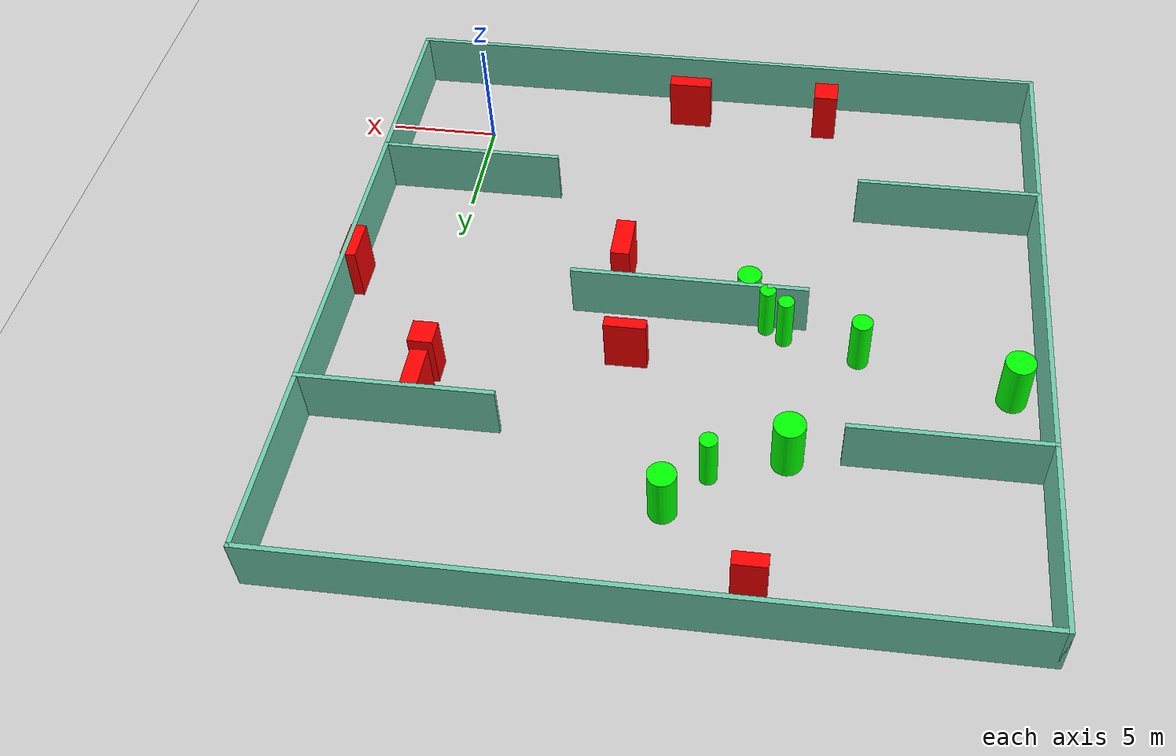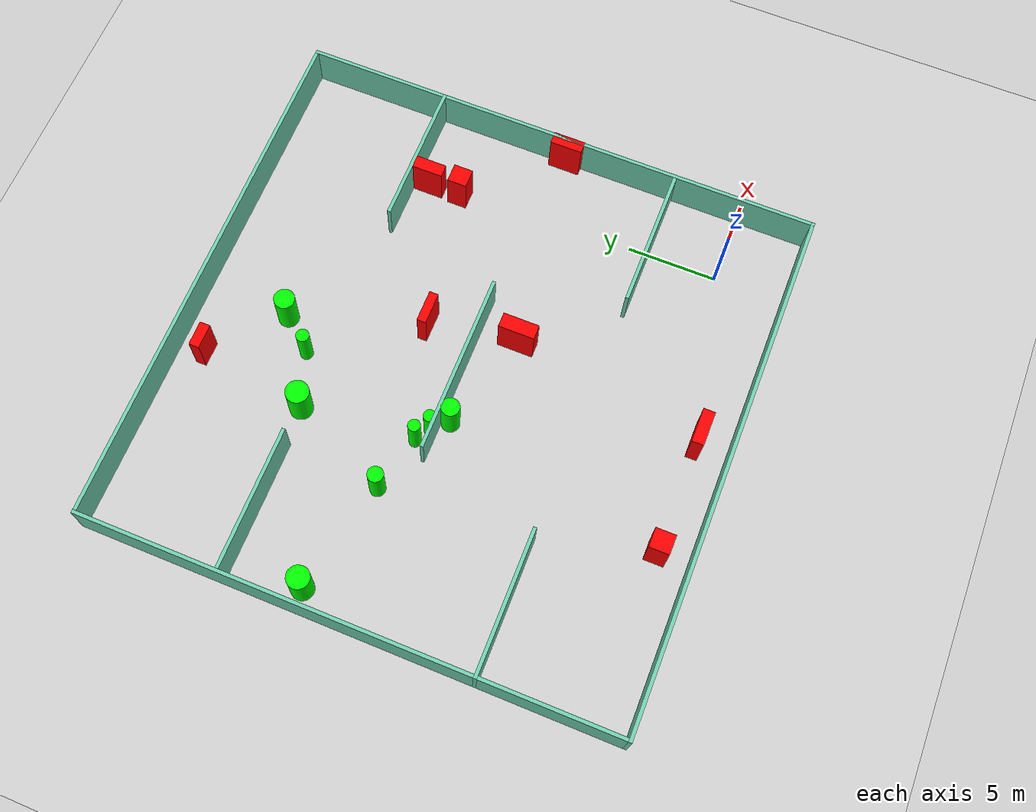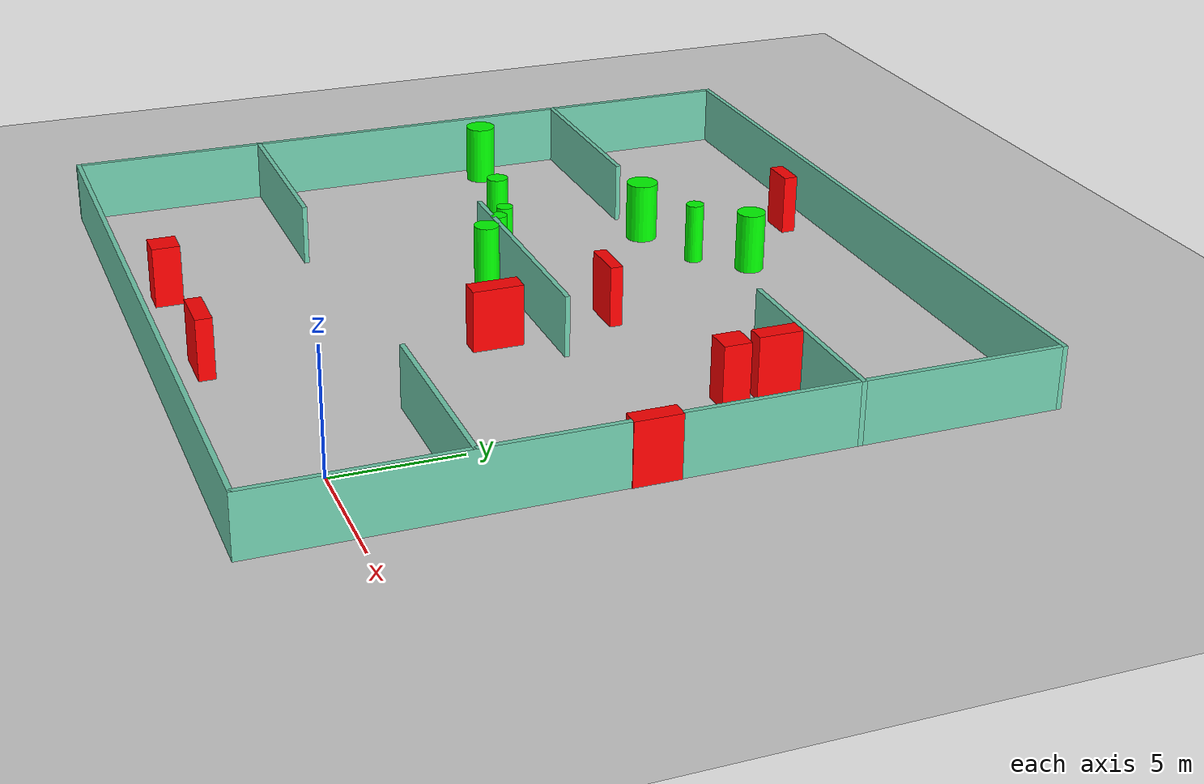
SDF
<sdf version="1.7">
 <world name="default">
  <light name="sun" type="directional">
   <pose>0 0 10 0 -0 0</pose>
   <diffuse>0.8 0.8 0.8 1</diffuse>
   <specular>0.2 0.2 0.2 1</specular>
   <attenuation>
    <range>1000</range>
    <constant>0.9</constant>
    <linear>0.01</linear>
    <quadratic>0.001</quadratic>
   </attenuation>
   <direction>-0.5 0.1 -0.9</direction>
   <spot><inner_angle>0</inner_angle><outer_angle>0</outer_angle><falloff>0</falloff></spot>
  </light>
  <model name="ground_plane">
   <static>1</static>
   <link name="link">
    <collision name="collision">
     <geometry><plane><normal>0 0 1</normal><size>100 100</size></plane></geometry>
     <surface>
      <contact><collide_bitmask>65535</collide_bitmask></contact>
      <friction><ode><mu>100</mu><mu2>50</mu2></ode></friction>
     </surface>
    </collision>
    <visual name="visual">
     <cast_shadows>0</cast_shadows>
     <geometry><plane><normal>0 0 1</normal><size>100 100</size></plane></geometry>
     <material>
      <script><uri>file://media/materials/scripts/gazebo.material</uri><name>Gazebo/Grey</name></script>
     </material>
    </visual>
   </link>
  </model>
  <gravity>0 0 -9.8</gravity>
  <magnetic_field>6e-06 2.3e-05 -4.2e-05</magnetic_field>
  <atmosphere type="adiabatic"/>
  <physics type="ode">
   <max_step_size>0.001</max_step_size>
   <real_time_factor>1</real_time_factor>
   <real_time_update_rate>1000</real_time_update_rate>
  </physics>
  <scene><ambient>0.4 0.4 0.4 1</ambient><background>0.7 0.7 0.7 1</background><shadows>1</shadows></scene>
  <spherical_coordinates>
   <surface_model>EARTH_WGS84</surface_model>
   <latitude_deg>0</latitude_deg>
   <longitude_deg>0</longitude_deg>
   <elevation>0</elevation>
   <heading_deg>0</heading_deg>
  </spherical_coordinates>
  <model name="my_base_walls">
   <link name="Wall_10">
    <collision name="Wall_10_Collision">
     <geometry><box><size>8.2 0.2 2.5</size></box></geometry>
     <pose>0 0 1.25 0 -0 0</pose>
    </collision>
    <visual name="Wall_10_Visual">
     <pose>0 0 1.25 0 -0 0</pose>
     <geometry><box><size>8.2 0.2 2.5</size></box></geometry>
     <material>
      <script><uri>file://media/materials/scripts/gazebo.material</uri><name>Gazebo/Grey</name></script>
      <ambient>0.435294 0.796078 0.67451 1</ambient>
     </material>
     <meta><layer>0</layer></meta>
    </visual>
    <pose>-11 -7 0 0 -0 0</pose>
   </link>
   <link name="Wall_12">
    <collision name="Wall_12_Collision">
     <geometry><box><size>8.2 0.2 2.5</size></box></geometry>
     <pose>0 0 1.25 0 -0 0</pose>
    </collision>
    <visual name="Wall_12_Visual">
     <pose>0 0 1.25 0 -0 0</pose>
     <geometry><box><size>8.2 0.2 2.5</size></box></geometry>
     <material>
      <script><uri>file://media/materials/scripts/gazebo.material</uri><name>Gazebo/Grey</name></script>
      <ambient>0.435294 0.796078 0.67451 1</ambient>
     </material>
     <meta><layer>0</layer></meta>
    </visual>
    <pose>-11 7 0 0 -0 0</pose>
   </link>
   <link name="Wall_14">
    <collision name="Wall_14_Collision">
     <geometry><box><size>8.2 0.2 2.5</size></box></geometry>
     <pose>0 0 1.25 0 -0 0</pose>
    </collision>
    <visual name="Wall_14_Visual">
     <pose>0 0 1.25 0 -0 0</pose>
     <geometry><box><size>8.2 0.2 2.5</size></box></geometry>
     <material>
      <script><uri>file://media/materials/scripts/gazebo.material</uri><name>Gazebo/Grey</name></script>
      <ambient>0.435294 0.796078 0.67451 1</ambient>
     </material>
     <meta><layer>0</layer></meta>
    </visual>
    <pose>11 7 0 0 -0 3.14159</pose>
   </link>
   <link name="Wall_16">
    <collision name="Wall_16_Collision">
     <geometry><box><size>10.2 0.2 2.5</size></box></geometry>
     <pose>0 0 1.25 0 -0 0</pose>
    </collision>
    <visual name="Wall_16_Visual">
     <pose>0 0 1.25 0 -0 0</pose>
     <geometry><box><size>10.2 0.2 2.5</size></box></geometry>
     <material>
      <script><uri>file://media/materials/scripts/gazebo.material</uri><name>Gazebo/Grey</name></script>
      <ambient>0.435294 0.796078 0.67451 1</ambient>
     </material>
     <meta><layer>0</layer></meta>
    </visual>
    <pose>0 0 0 0 -0 3.14159</pose>
   </link>
   <link name="Wall_2">
    <collision name="Wall_2_Collision">
     <geometry><box><size>30.2 0.2 2.5</size></box></geometry>
     <pose>0 0 1.25 0 -0 0</pose>
    </collision>
    <visual name="Wall_2_Visual">
     <pose>0 0 1.25 0 -0 0</pose>
     <geometry><box><size>30.2 0.2 2.5</size></box></geometry>
     <material>
      <script><uri>file://media/materials/scripts/gazebo.material</uri><name>Gazebo/Grey</name></script>
      <ambient>0.435294 0.796078 0.67451 1</ambient>
     </material>
     <meta><layer>0</layer></meta>
    </visual>
    <pose>0 -15 0 0 -0 3.14159</pose>
   </link>
   <link name="Wall_3">
    <collision name="Wall_3_Collision">
     <geometry><box><size>30.2 0.2 2.5</size></box></geometry>
     <pose>0 0 1.25 0 -0 0</pose>
    </collision>
    <visual name="Wall_3_Visual">
     <pose>0 0 1.25 0 -0 0</pose>
     <geometry><box><size>30.2 0.2 2.5</size></box></geometry>
     <material>
      <script><uri>file://media/materials/scripts/gazebo.material</uri><name>Gazebo/Grey</name></script>
      <ambient>0.435294 0.796078 0.67451 1</ambient>
     </material>
     <meta><layer>0</layer></meta>
    </visual>
    <pose>-15 0 0 0 -0 1.5708</pose>
   </link>
   <link name="Wall_4">
    <collision name="Wall_4_Collision">
     <geometry><box><size>30.2 0.2 2.5</size></box></geometry>
     <pose>0 0 1.25 0 -0 0</pose>
    </collision>
    <visual name="Wall_4_Visual">
     <pose>0 0 1.25 0 -0 0</pose>
     <geometry><box><size>30.2 0.2 2.5</size></box></geometry>
     <material>
      <script><uri>file://media/materials/scripts/gazebo.material</uri><name>Gazebo/Grey</name></script>
      <ambient>0.435294 0.796078 0.67451 1</ambient>
     </material>
     <meta><layer>0</layer></meta>
    </visual>
    <pose>0 15 0 0 -0 0</pose>
   </link>
   <link name="Wall_6">
    <collision name="Wall_6_Collision">
     <geometry><box><size>30.2 0.2 2.5</size></box></geometry>
     <pose>0 0 1.25 0 -0 0</pose>
    </collision>
    <visual name="Wall_6_Visual">
     <pose>0 0 1.25 0 -0 0</pose>
     <geometry><box><size>30.2 0.2 2.5</size></box></geometry>
     <material>
      <script><uri>file://media/materials/scripts/gazebo.material</uri><name>Gazebo/Grey</name></script>
      <ambient>0.435294 0.796078 0.67451 1</ambient>
     </material>
     <meta><layer>0</layer></meta>
    </visual>
    <pose>15 0 0 0 -0 1.5708</pose>
   </link>
   <link name="Wall_8">
    <collision name="Wall_8_Collision">
     <geometry><box><size>8.2 0.2 2.5</size></box></geometry>
     <pose>0 0 1.25 0 -0 0</pose>
    </collision>
    <visual name="Wall_8_Visual">
     <pose>0 0 1.25 0 -0 0</pose>
     <geometry><box><size>8.2 0.2 2.5</size></box></geometry>
     <material>
      <script><uri>file://media/materials/scripts/gazebo.material</uri><name>Gazebo/Grey</name></script>
      <ambient>0.435294 0.796078 0.67451 1</ambient>
     </material>
     <meta><layer>0</layer></meta>
    </visual>
    <pose>11 -7 0 0 -0 3.14159</pose>
   </link>
   <static>1</static>
   <pose>-11 11 0 0 -0 0</pose>
  </model>
  <model name="cylinder1">
   <static>1</static>
   <link name="link">
    <inertial>
     <mass>1</mass>
     <inertia><ixx>0.5</ixx><ixy>0</ixy><ixz>0</ixz><iyy>0.5</iyy><iyz>0</iyz><izz>1</izz></inertia>
    </inertial>
    <collision name="collision">
     <geometry><cylinder><radius>0.34071357821564124</radius><length>2.5</length></cylinder></geometry>
    </collision>
    <visual name="visual">
     <geometry><cylinder><radius>0.34071357821564124</radius><length>2.5</length></cylinder></geometry>
     <material>
      <ambient>0 1 0 1</ambient>
      <diffuse>0 1 0 1</diffuse>
      <specular>0.1 0.1 0.1 1</specular>
      <emissive>0 0 0 0</emissive>
     </material>
    </visual>
   </link>
   <pose>-14.372343226322412 11.260583517649387 1.25 0 0 0</pose>
  </model>
  <model name="cylinder2">
   <static>1</static>
   <link name="link">
    <inertial>
     <mass>1</mass>
     <inertia><ixx>0.5</ixx><ixy>0</ixy><ixz>0</ixz><iyy>0.5</iyy><iyz>0</iyz><izz>1</izz></inertia>
    </inertial>
    <collision name="collision">
     <geometry><cylinder><radius>0.443032990273278</radius><length>2.5</length></cylinder></geometry>
    </collision>
    <visual name="visual">
     <geometry><cylinder><radius>0.443032990273278</radius><length>2.5</length></cylinder></geometry>
     <material>
      <ambient>0 1 0 1</ambient>
      <diffuse>0 1 0 1</diffuse>
      <specular>0.1 0.1 0.1 1</specular>
      <emissive>0 0 0 0</emissive>
     </material>
    </visual>
   </link>
   <pose>-18.38672059916577 12.608031052057932 1.25 0 0 0</pose>
  </model>
  <model name="cylinder3">
   <static>1</static>
   <link name="link">
    <inertial>
     <mass>1</mass>
     <inertia><ixx>0.5</ixx><ixy>0</ixy><ixz>0</ixz><iyy>0.5</iyy><iyz>0</iyz><izz>1</izz></inertia>
    </inertial>
    <collision name="collision">
     <geometry><cylinder><radius>0.348089465862379</radius><length>2.5</length></cylinder></geometry>
    </collision>
    <visual name="visual">
     <geometry><cylinder><radius>0.348089465862379</radius><length>2.5</length></cylinder></geometry>
     <material>
      <ambient>0 1 0 1</ambient>
      <diffuse>0 1 0 1</diffuse>
      <specular>0.1 0.1 0.1 1</specular>
      <emissive>0 0 0 0</emissive>
     </material>
    </visual>
   </link>
   <pose>-15.18193877453243 11.805687720688109 1.25 0 0 0</pose>
  </model>
  <model name="cylinder4">
   <static>1</static>
   <link name="link">
    <inertial>
     <mass>1</mass>
     <inertia><ixx>0.5</ixx><ixy>0</ixy><ixz>0</ixz><iyy>0.5</iyy><iyz>0</iyz><izz>1</izz></inertia>
    </inertial>
    <collision name="collision">
     <geometry><cylinder><radius>0.6537343648909647</radius><length>2.5</length></cylinder></geometry>
    </collision>
    <visual name="visual">
     <geometry><cylinder><radius>0.6537343648909647</radius><length>2.5</length></cylinder></geometry>
     <material>
      <ambient>0 1 0 1</ambient>
      <diffuse>0 1 0 1</diffuse>
      <specular>0.1 0.1 0.1 1</specular>
      <emissive>0 0 0 0</emissive>
     </material>
    </visual>
   </link>
   <pose>-15.77066431407285 18.22758998896468 1.25 0 0 0</pose>
  </model>
  <model name="cylinder5">
   <static>1</static>
   <link name="link">
    <inertial>
     <mass>1</mass>
     <inertia><ixx>0.5</ixx><ixy>0</ixy><ixz>0</ixz><iyy>0.5</iyy><iyz>0</iyz><izz>1</izz></inertia>
    </inertial>
    <collision name="collision">
     <geometry><cylinder><radius>0.517633359042293</radius><length>2.5</length></cylinder></geometry>
    </collision>
    <visual name="visual">
     <geometry><cylinder><radius>0.517633359042293</radius><length>2.5</length></cylinder></geometry>
     <material>
      <ambient>0 1 0 1</ambient>
      <diffuse>0 1 0 1</diffuse>
      <specular>0.1 0.1 0.1 1</specular>
      <emissive>0 0 0 0</emissive>
     </material>
    </visual>
   </link>
   <pose>-13.52376483628366 10.441091307184047 1.25 0 0 0</pose>
  </model>
  <model name="cylinder6">
   <static>1</static>
   <link name="link">
    <inertial>
     <mass>1</mass>
     <inertia><ixx>0.5</ixx><ixy>0</ixy><ixz>0</ixz><iyy>0.5</iyy><iyz>0</iyz><izz>1</izz></inertia>
    </inertial>
    <collision name="collision">
     <geometry><cylinder><radius>0.6361026716127792</radius><length>2.5</length></cylinder></geometry>
    </collision>
    <visual name="visual">
     <geometry><cylinder><radius>0.6361026716127792</radius><length>2.5</length></cylinder></geometry>
     <material>
      <ambient>0 1 0 1</ambient>
      <diffuse>0 1 0 1</diffuse>
      <specular>0.1 0.1 0.1 1</specular>
      <emissive>0 0 0 0</emissive>
     </material>
    </visual>
   </link>
   <pose>-24.781543763218025 14.036545933145952 1.25 0 0 0</pose>
  </model>
  <model name="cylinder7">
   <static>1</static>
   <link name="link">
    <inertial>
     <mass>1</mass>
     <inertia><ixx>0.5</ixx><ixy>0</ixy><ixz>0</ixz><iyy>0.5</iyy><iyz>0</iyz><izz>1</izz></inertia>
    </inertial>
    <collision name="collision">
     <geometry><cylinder><radius>0.36762506506878573</radius><length>2.5</length></cylinder></geometry>
    </collision>
    <visual name="visual">
     <geometry><cylinder><radius>0.36762506506878573</radius><length>2.5</length></cylinder></geometry>
     <material>
      <ambient>0 1 0 1</ambient>
      <diffuse>0 1 0 1</diffuse>
      <specular>0.1 0.1 0.1 1</specular>
      <emissive>0 0 0 0</emissive>
     </material>
    </visual>
   </link>
   <pose>-12.725453355982332 19.310225712128567 1.25 0 0 0</pose>
  </model>
  <model name="cylinder8">
   <static>1</static>
   <link name="link">
    <inertial>
     <mass>1</mass>
     <inertia><ixx>0.5</ixx><ixy>0</ixy><ixz>0</ixz><iyy>0.5</iyy><iyz>0</iyz><izz>1</izz></inertia>
    </inertial>
    <collision name="collision">
     <geometry><cylinder><radius>0.583471194416594</radius><length>2.5</length></cylinder></geometry>
    </collision>
    <visual name="visual">
     <geometry><cylinder><radius>0.583471194416594</radius><length>2.5</length></cylinder></geometry>
     <material>
      <ambient>0 1 0 1</ambient>
      <diffuse>0 1 0 1</diffuse>
      <specular>0.1 0.1 0.1 1</specular>
      <emissive>0 0 0 0</emissive>
     </material>
    </visual>
   </link>
   <pose>-11.140155249955079 21.118208625209018 1.25 0 0 0</pose>
  </model>
  <model name="box1">
   <static>1</static>
   <link name="link">
    <inertial>
     <mass>1</mass>
     <inertia><ixx>0.083</ixx><ixy>0</ixy><ixz>0</ixz><iyy>0.083</iyy><iyz>0</iyz><izz>0.083</izz></inertia>
    </inertial>
    <collision name="collision">
     <geometry><box><size>1.1060979182348105 1.1289129158558182 2.5</size></box></geometry>
    </collision>
    <visual name="visual">
     <geometry><box><size>1.1060979182348105 1.1289129158558182 2.5</size></box></geometry>
     <material>
      <ambient>1 0 0 1</ambient>
      <diffuse>1 0 0 1</diffuse>
      <specular>0.1 0.1 0.1 1</specular>
      <emissive>0 0 0 0</emissive>
     </material>
    </visual>
    <sensor name="my_contact" type="contact">
     <contact><collision>box_collision</collision><topic>__default_topic__</topic></contact>
    </sensor>
   </link>
   <pose>-16.148904232072717 -2.201910619658947 1.25 0 0 0</pose>
  </model>
  <model name="box2">
   <static>1</static>
   <link name="link">
    <inertial>
     <mass>1</mass>
     <inertia><ixx>0.083</ixx><ixy>0</ixy><ixz>0</ixz><iyy>0.083</iyy><iyz>0</iyz><izz>0.083</izz></inertia>
    </inertial>
    <collision name="collision">
     <geometry><box><size>0.6804707543460257 1.8265034757106908 2.5</size></box></geometry>
    </collision>
    <visual name="visual">
     <geometry><box><size>0.6804707543460257 1.8265034757106908 2.5</size></box></geometry>
     <material>
      <ambient>1 0 0 1</ambient>
      <diffuse>1 0 0 1</diffuse>
      <specular>0.1 0.1 0.1 1</specular>
      <emissive>0 0 0 0</emissive>
     </material>
    </visual>
    <sensor name="my_contact" type="contact">
     <contact><collision>box_collision</collision><topic>__default_topic__</topic></contact>
    </sensor>
   </link>
   <pose>3.7940683472747274 10.355017674079528 1.25 0 0 0</pose>
  </model>
  <model name="box3">
   <static>1</static>
   <link name="link">
    <inertial>
     <mass>1</mass>
     <inertia><ixx>0.083</ixx><ixy>0</ixy><ixz>0</ixz><iyy>0.083</iyy><iyz>0</iyz><izz>0.083</izz></inertia>
    </inertial>
    <collision name="collision">
     <geometry><box><size>1.9670629070492625 0.6626705623516351 2.5</size></box></geometry>
    </collision>
    <visual name="visual">
     <geometry><box><size>1.9670629070492625 0.6626705623516351 2.5</size></box></geometry>
     <material>
      <ambient>1 0 0 1</ambient>
      <diffuse>1 0 0 1</diffuse>
      <specular>0.1 0.1 0.1 1</specular>
      <emissive>0 0 0 0</emissive>
     </material>
    </visual>
    <sensor name="my_contact" type="contact">
     <contact><collision>box_collision</collision><topic>__default_topic__</topic></contact>
    </sensor>
   </link>
   <pose>-9.554393445669104 -2.1802522056904245 1.25 0 0 0</pose>
  </model>
  <model name="box4">
   <static>1</static>
   <link name="link">
    <inertial>
     <mass>1</mass>
     <inertia><ixx>0.083</ixx><ixy>0</ixy><ixz>0</ixz><iyy>0.083</iyy><iyz>0</iyz><izz>0.083</izz></inertia>
    </inertial>
    <collision name="collision">
     <geometry><box><size>1.057981622566101 1.0977224720118222 2.5</size></box></geometry>
    </collision>
    <visual name="visual">
     <geometry><box><size>1.057981622566101 1.0977224720118222 2.5</size></box></geometry>
     <material>
      <ambient>1 0 0 1</ambient>
      <diffuse>1 0 0 1</diffuse>
      <specular>0.1 0.1 0.1 1</specular>
      <emissive>0 0 0 0</emissive>
     </material>
    </visual>
    <sensor name="my_contact" type="contact">
     <contact><collision>box_collision</collision><topic>__default_topic__</topic></contact>
    </sensor>
   </link>
   <pose>-0.4991887697254498 15.194590442557033 1.25 0 0 0</pose>
  </model>
  <model name="box5">
   <static>1</static>
   <link name="link">
    <inertial>
     <mass>1</mass>
     <inertia><ixx>0.083</ixx><ixy>0</ixy><ixz>0</ixz><iyy>0.083</iyy><iyz>0</iyz><izz>0.083</izz></inertia>
    </inertial>
    <collision name="collision">
     <geometry><box><size>0.7173865255767293 1.773763064058764 2.5</size></box></geometry>
    </collision>
    <visual name="visual">
     <geometry><box><size>0.7173865255767293 1.773763064058764 2.5</size></box></geometry>
     <material>
      <ambient>1 0 0 1</ambient>
      <diffuse>1 0 0 1</diffuse>
      <specular>0.1 0.1 0.1 1</specular>
      <emissive>0 0 0 0</emissive>
     </material>
    </visual>
    <sensor name="my_contact" type="contact">
     <contact><collision>box_collision</collision><topic>__default_topic__</topic></contact>
    </sensor>
   </link>
   <pose>-0.5895646915689667 17.045017303728994 1.25 0 0 0</pose>
  </model>
  <model name="box6">
   <static>1</static>
   <link name="link">
    <inertial>
     <mass>1</mass>
     <inertia><ixx>0.083</ixx><ixy>0</ixy><ixz>0</ixz><iyy>0.083</iyy><iyz>0</iyz><izz>0.083</izz></inertia>
    </inertial>
    <collision name="collision">
     <geometry><box><size>0.831072209347415 2.0482527178739645 2.5</size></box></geometry>
    </collision>
    <visual name="visual">
     <geometry><box><size>0.831072209347415 2.0482527178739645 2.5</size></box></geometry>
     <material>
      <ambient>1 0 0 1</ambient>
      <diffuse>1 0 0 1</diffuse>
      <specular>0.1 0.1 0.1 1</specular>
      <emissive>0 0 0 0</emissive>
     </material>
    </visual>
    <sensor name="my_contact" type="contact">
     <contact><collision>box_collision</collision><topic>__default_topic__</topic></contact>
    </sensor>
   </link>
   <pose>-7.845207331904817 8.80646083624653 1.25 0 0 0</pose>
  </model>
  <model name="box7">
   <static>1</static>
   <link name="link">
    <inertial>
     <mass>1</mass>
     <inertia><ixx>0.083</ixx><ixy>0</ixy><ixz>0</ixz><iyy>0.083</iyy><iyz>0</iyz><izz>0.083</izz></inertia>
    </inertial>
    <collision name="collision">
     <geometry><box><size>1.3888845296189622 0.5869112890065484 2.5</size></box></geometry>
    </collision>
    <visual name="visual">
     <geometry><box><size>1.3888845296189622 0.5869112890065484 2.5</size></box></geometry>
     <material>
      <ambient>1 0 0 1</ambient>
      <diffuse>1 0 0 1</diffuse>
      <specular>0.1 0.1 0.1 1</specular>
      <emissive>0 0 0 0</emissive>
     </material>
    </visual>
    <sensor name="my_contact" type="contact">
     <contact><collision>box_collision</collision><topic>__default_topic__</topic></contact>
    </sensor>
   </link>
   <pose>-14.772118839132418 24.41501535511499 1.25 0 0 0</pose>
  </model>
  <model name="box8">
   <static>1</static>
   <link name="link">
    <inertial>
     <mass>1</mass>
     <inertia><ixx>0.083</ixx><ixy>0</ixy><ixz>0</ixz><iyy>0.083</iyy><iyz>0</iyz><izz>0.083</izz></inertia>
    </inertial>
    <collision name="collision">
     <geometry><box><size>1.792713409445688 0.513665236993451 2.5</size></box></geometry>
    </collision>
    <visual name="visual">
     <geometry><box><size>1.792713409445688 0.513665236993451 2.5</size></box></geometry>
     <material>
      <ambient>1 0 0 1</ambient>
      <diffuse>1 0 0 1</diffuse>
      <specular>0.1 0.1 0.1 1</specular>
      <emissive>0 0 0 0</emissive>
     </material>
    </visual>
    <sensor name="my_contact" type="contact">
     <contact><collision>box_collision</collision><topic>__default_topic__</topic></contact>
    </sensor>
   </link>
   <pose>-8.664720514593462 13.7556384673724 1.25 0 0 0</pose>
  </model>
 </world>
</sdf>
